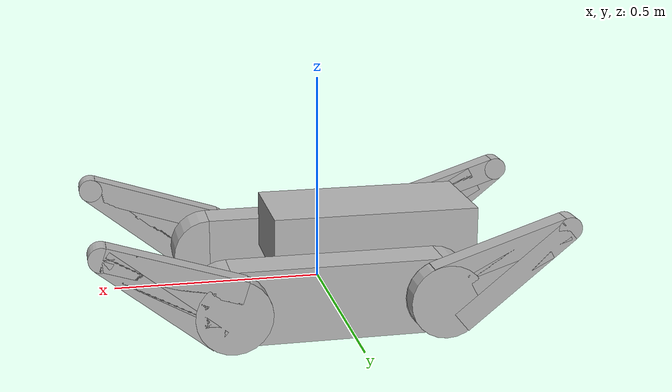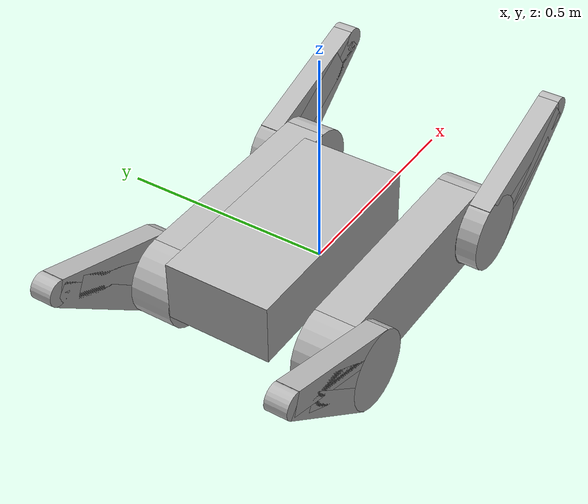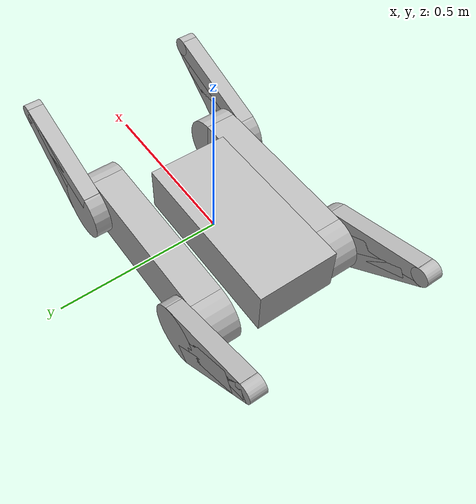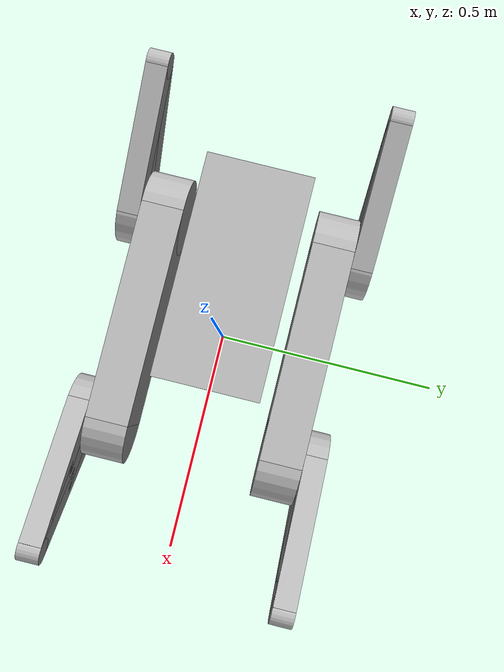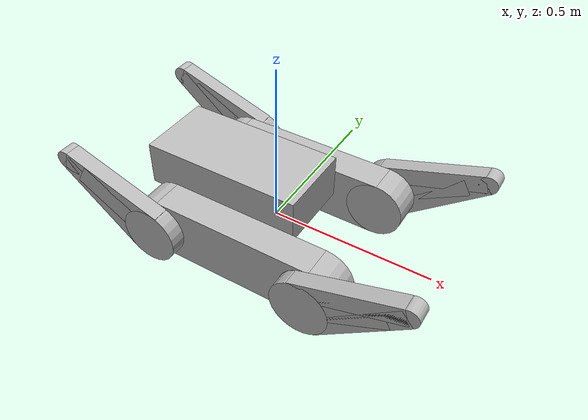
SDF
<sdf version='1.9'>
    <model name='simple_tracked'>
      <link name="base_footprint" />

      <link name='base_link'>
        <pose>0 0 0 0 0 0</pose>
        <inertial>
          <pose>-0.122 0 0.11799999999999999 1.5708 0 0</pose>
          <mass>13.140000000000001</mass>
          <inertia>
            <ixx>0.10019</ixx>
            <ixy>0</ixy>
            <ixz>0</ixz>
            <iyy>0.34504299999999999</iyy>
            <iyz>0</iyz>
            <izz>0.30204399999999998</izz>
          </inertia>
        </inertial>
        <collision name='base_link_collision'>
          <pose>-0.122 0 0.11799999999999999 0 0 0</pose>
          <geometry>
            <box>
              <size>0.50017 0.24093000000000001 0.13900000000000001</size>
            </box>
          </geometry>
          <surface>
            <friction>
              <ode/>
            </friction>
            <bounce/>
            <contact/>
          </surface>
        </collision>
        <visual name='base_link_visual'>
          <pose>-0.122 0 0.11799999999999999 0 0 0</pose>
          <geometry>
            <box>
              <size>0.50017 0.24093000000000001 0.13900000000000001</size>
            </box>
          </geometry>
        </visual>
        <self_collide>false</self_collide>
        <gravity>true</gravity>
        <kinematic>false</kinematic>
        <enable_wind>false</enable_wind>
        <sensor name="imu_sensor" type="imu">
          <always_on>1</always_on>
          <update_rate>1</update_rate>
          <visualize>true</visualize>
          <topic>imu</topic>
        </sensor>
      </link>
      <joint name='base_joint' type='fixed'>
        <child>base_link</child>
        <parent>base_footprint</parent>
        <pose>0 0 0 0 0 0</pose>
      </joint>

      <link name='left_track'>
        <pose>0 0.19850000000000001 -1.3877787807814457e-17 -6.6174449004242214e-24 -3.2182495707141233e-23 -8.6736173798840355e-19</pose>
        <inertial>
          <pose>0 0 0.0141 0 0 0</pose>
          <mass>6.0599999999999996</mass>
          <inertia>
            <ixx>0.0027309999999999999</ixx>
            <ixy>0</ixy>
            <ixz>0</ixz>
            <iyy>0.032554</iyy>
            <iyz>1.5e-05</iyz>
            <izz>0.031391000000000002</izz>
          </inertia>
        </inertial>
        <collision name='left_track_collision'>
          <pose>0 0 0.018550000000000001 1.5708 -5.5511151231257827e-17 1.5708</pose>
          <geometry>
            <box>
              <size>0.097280000000000005 0.18093999999999999 0.5</size>
            </box>
          </geometry>
          <surface>
            <friction>
              <ode>
                <mu>0.69999999999999996</mu>
                <mu2>150</mu2>
                <fdir1>0 1 0</fdir1>
              </ode>
            </friction>
            <bounce/>
            <contact/>
          </surface>
        </collision>
        <collision name='left_track_collision_1'>
          <pose>0.25 0 0.018550000000000001 1.5708 0 0</pose>
          <geometry>
            <cylinder>
              <length>0.097280000000000005</length>
              <radius>0.090469999999999995</radius>
            </cylinder>
          </geometry>
          <surface>
            <friction>
              <ode>
                <mu>0.69999999999999996</mu>
                <mu2>150</mu2>
                <fdir1>0 1 0</fdir1>
              </ode>
            </friction>
            <bounce/>
            <contact/>
          </surface>
        </collision>
        <collision name='left_track_collision_2'>
          <pose>-0.25 0 0.018550000000000001 1.5708 0 0</pose>
          <geometry>
            <cylinder>
              <length>0.097280000000000005</length>
              <radius>0.090469999999999995</radius>
            </cylinder>
          </geometry>
          <surface>
            <friction>
              <ode>
                <mu>0.69999999999999996</mu>
                <mu2>150</mu2>
                <fdir1>0 1 0</fdir1>
              </ode>
            </friction>
            <bounce/>
            <contact/>
          </surface>
        </collision>
        <visual name='left_track_visual'>
          <pose>0 0 0.018550000000000001 1.5708 -5.5511151231257827e-17 1.5708</pose>
          <geometry>
            <box>
              <size>0.097280000000000005 0.18093999999999999 0.5</size>
            </box>
          </geometry>
        </visual>
        <visual name='left_track_visual_1'>
          <pose>0.25 0 0.018550000000000001 1.5708 0 0</pose>
          <geometry>
            <cylinder>
              <length>0.097280000000000005</length>
              <radius>0.090469999999999995</radius>
            </cylinder>
          </geometry>
        </visual>
        <visual name='left_track_visual_2'>
          <pose>-0.25 0 0.018550000000000001 1.5708 0 0</pose>
          <geometry>
            <cylinder>
              <length>0.097280000000000005</length>
              <radius>0.090469999999999995</radius>
            </cylinder>
          </geometry>
        </visual>
        <gravity>true</gravity>
        <kinematic>false</kinematic>
        <enable_wind>false</enable_wind>
      </link>
      <joint name='left_track_j' type='fixed'>
        <child>left_track</child>
        <parent>base_link</parent>
        <pose>0 0 0 0 0 0</pose>
      </joint>
      <link name='right_track'>
        <pose>-8.8817841970012523e-16 -0.19850000000000001 -1.3877787807814457e-17 -6.6174449004242214e-24 -3.2182495707141233e-23 -8.6736173798840355e-19</pose>
        <inertial>
          <pose>0 0 0.0141 0 0 0</pose>
          <mass>6.0599999999999996</mass>
          <inertia>
            <ixx>0.0027309999999999999</ixx>
            <ixy>0</ixy>
            <ixz>0</ixz>
            <iyy>0.032554</iyy>
            <iyz>1.5e-05</iyz>
            <izz>0.031391000000000002</izz>
          </inertia>
        </inertial>
        <collision name='right_track_collision'>
          <pose>0 0 0.018550000000000001 1.5708 -5.5511151231257827e-17 1.5708</pose>
          <geometry>
            <box>
              <size>0.097280000000000005 0.18093999999999999 0.5</size>
            </box>
          </geometry>
          <surface>
            <friction>
              <ode>
                <mu>0.69999999999999996</mu>
                <mu2>150</mu2>
                <fdir1>0 1 0</fdir1>
              </ode>
            </friction>
            <bounce/>
            <contact/>
          </surface>
        </collision>
        <collision name='right_track_collision_1'>
          <pose>0.25 0 0.018550000000000001 1.5708 0 0</pose>
          <geometry>
            <cylinder>
              <length>0.097280000000000005</length>
              <radius>0.090469999999999995</radius>
            </cylinder>
          </geometry>
          <surface>
            <friction>
              <ode>
                <mu>0.69999999999999996</mu>
                <mu2>150</mu2>
                <fdir1>0 1 0</fdir1>
              </ode>
            </friction>
            <bounce/>
            <contact/>
          </surface>
        </collision>
        <collision name='right_track_collision_2'>
          <pose>-0.25 0 0.018550000000000001 1.5708 0 0</pose>
          <geometry>
            <cylinder>
              <length>0.097280000000000005</length>
              <radius>0.090469999999999995</radius>
            </cylinder>
          </geometry>
          <surface>
            <friction>
              <ode>
                <mu>0.69999999999999996</mu>
                <mu2>150</mu2>
                <fdir1>0 1 0</fdir1>
              </ode>
            </friction>
            <bounce/>
            <contact/>
          </surface>
        </collision>
        <visual name='right_track_visual'>
          <pose>0 0 0.018550000000000001 1.5708 -5.5511151231257827e-17 1.5708</pose>
          <geometry>
            <box>
              <size>0.097280000000000005 0.18093999999999999 0.5</size>
            </box>
          </geometry>
        </visual>
        <visual name='right_track_visual_1'>
          <pose>0.25 0 0.018550000000000001 1.5708 0 0</pose>
          <geometry>
            <cylinder>
              <length>0.097280000000000005</length>
              <radius>0.090469999999999995</radius>
            </cylinder>
          </geometry>
        </visual>
        <visual name='right_track_visual_2'>
          <pose>-0.25 0 0.018550000000000001 1.5708 0 0</pose>
          <geometry>
            <cylinder>
              <length>0.097280000000000005</length>
              <radius>0.090469999999999995</radius>
            </cylinder>
          </geometry>
        </visual>
        <gravity>true</gravity>
        <kinematic>false</kinematic>
        <enable_wind>false</enable_wind>
      </link>
      <joint name='right_track_j' type='fixed'>
        <child>right_track</child>
        <parent>base_link</parent>
        <pose>0 0 0 0 0 0</pose>
      </joint>
      <link name='front_left_flipper'>
        <pose>0.24999994858526753 0.2719999948407883 0.019499993412040811 1.3959020833992615e-08 -0.49651992800560996 1.935706113526475e-07</pose>
        <inertial>
          <pose>0.080000000000000002 0 0 0 0 0</pose>
          <mass>0.75</mass>
          <inertia>
            <ixx>0.0017491</ixx>
            <ixy>2.8512e-07</ixy>
            <ixz>0.0018277</ixz>
            <iyy>0.012277</iyy>
            <iyz>-3.6287999999999998e-07</iyz>
            <izz>0.010940999999999999</izz>
          </inertia>
        </inertial>
        <collision name='front_left_flipper_collision_large_wheel_collision'>
          <pose>0 0 0 1.5708 0 0</pose>
          <geometry>
            <cylinder>
              <length>0.04981</length>
              <radius>0.088999999999999996</radius>
            </cylinder>
          </geometry>
          <surface>
            <friction>
              <ode>
                <mu>0.69999999999999996</mu>
                <mu2>150</mu2>
                <fdir1>0 1 0</fdir1>
              </ode>
            </friction>
            <contact>
              <ode/>
            </contact>
            <bounce/>
          </surface>
          <max_contacts>20</max_contacts>
        </collision>
        <collision name='front_left_flipper_collision_small_wheel_collision_1'>
          <pose>0.33000000000000002 0 0 1.5708 0 0</pose>
          <geometry>
            <cylinder>
              <length>0.04981</length>
              <radius>0.029000000000000001</radius>
            </cylinder>
          </geometry>
          <surface>
            <friction>
              <ode>
                <mu>0.69999999999999996</mu>
                <mu2>150</mu2>
                <fdir1>0 1 0</fdir1>
              </ode>
            </friction>
            <contact>
              <ode/>
            </contact>
            <bounce/>
          </surface>
          <max_contacts>20</max_contacts>
        </collision>
        <collision name='front_left_flipper_collision_top_bar_collision_2'>
          <pose>0.16500000000000001 0 0.032500000000000001 0 0.18416199999999999 0</pose>
          <geometry>
            <box>
              <size>0.33000000000000002 0.04981 0.055</size>
            </box>
          </geometry>
          <surface>
            <friction>
              <ode>
                <mu>0.69999999999999996</mu>
                <mu2>150</mu2>
                <fdir1>0 1 0</fdir1>
              </ode>
            </friction>
            <contact>
              <ode/>
            </contact>
            <bounce/>
          </surface>
          <max_contacts>20</max_contacts>
        </collision>
        <collision name='front_left_flipper_collision_bottom_bar_collision_3'>
          <pose>0.16500000000000001 0 -0.032500000000000001 0 -0.18416199999999999 0</pose>
          <geometry>
            <box>
              <size>0.33000000000000002 0.04981 0.055</size>
            </box>
          </geometry>
          <surface>
            <friction>
              <ode>
                <mu>0.69999999999999996</mu>
                <mu2>150</mu2>
                <fdir1>0 1 0</fdir1>
              </ode>
            </friction>
            <contact>
              <ode/>
            </contact>
            <bounce/>
          </surface>
          <max_contacts>20</max_contacts>
        </collision>
        <collision name='front_left_flipper_collision_middle_bar_collision_4'>
          <pose>0.16600000000000001 0 0.0040000000000000001 0 -0.02 0</pose>
          <geometry>
            <box>
              <size>0.20000000000000001 0.04981 0.070000000000000007</size>
            </box>
          </geometry>
          <surface>
            <friction>
              <ode>
                <mu>0.69999999999999996</mu>
                <mu2>150</mu2>
                <fdir1>0 1 0</fdir1>
              </ode>
            </friction>
            <contact>
              <ode/>
            </contact>
            <bounce/>
          </surface>
          <max_contacts>20</max_contacts>
        </collision>
        <visual name='front_left_flipper_visual_large_wheel_visual'>
          <pose>0 0 0 1.5708 0 0</pose>
          <geometry>
            <cylinder>
              <length>0.04981</length>
              <radius>0.088999999999999996</radius>
            </cylinder>
          </geometry>
        </visual>
        <visual name='front_left_flipper_visual_small_wheel_visual_1'>
          <pose>0.33000000000000002 0 0 1.5708 0 0</pose>
          <geometry>
            <cylinder>
              <length>0.04981</length>
              <radius>0.029000000000000001</radius>
            </cylinder>
          </geometry>
        </visual>
        <visual name='front_left_flipper_visual_top_bar_visual_2'>
          <pose>0.16500000000000001 0 0.032500000000000001 0 0.18416199999999999 0</pose>
          <geometry>
            <box>
              <size>0.33000000000000002 0.04981 0.055</size>
            </box>
          </geometry>
        </visual>
        <visual name='front_left_flipper_visual_bottom_bar_visual_3'>
          <pose>0.16500000000000001 0 -0.032500000000000001 0 -0.18416199999999999 0</pose>
          <geometry>
            <box>
              <size>0.33000000000000002 0.04981 0.055</size>
            </box>
          </geometry>
        </visual>
        <visual name='front_left_flipper_visual_middle_bar_visual_4'>
          <pose>0.16600000000000001 0 0.0040000000000000001 0 -0.02 0</pose>
          <geometry>
            <box>
              <size>0.20000000000000001 0.04981 0.070000000000000007</size>
            </box>
          </geometry>
        </visual>
        <gravity>true</gravity>
        <velocity_decay/>
        <self_collide>true</self_collide>
        <kinematic>false</kinematic>
        <enable_wind>false</enable_wind>
      </link>
      <joint name='front_left_flipper_j' type='revolute'>
        <child>front_left_flipper</child>
        <parent>left_track</parent>
        <pose>0 0 0 0 0 0</pose>
        <axis>
          <xyz>0 1 0</xyz>
          <dynamics>
            <damping>0.5</damping>
          </dynamics>
        </axis>
      </joint>
      <link name='rear_left_flipper'>
        <pose>-0.24999999999999956 0.27199999999999996 0.019500000000000045 3.1415899999999999 -0.499999999999307 3.1415899999999999</pose>
        <inertial>
          <pose>0.080000000000000002 0 0 0 0 0</pose>
          <mass>0.75</mass>
          <inertia>
            <ixx>0.0017491</ixx>
            <ixy>2.8512e-07</ixy>
            <ixz>0.0018277</ixz>
            <iyy>0.012277</iyy>
            <iyz>-3.6287999999999998e-07</iyz>
            <izz>0.010940999999999999</izz>
          </inertia>
        </inertial>
        <collision name='rear_left_flipper_collision_large_wheel_collision'>
          <pose>0 0 0 1.5708 0 0</pose>
          <geometry>
            <cylinder>
              <length>0.04981</length>
              <radius>0.088999999999999996</radius>
            </cylinder>
          </geometry>
          <surface>
            <friction>
              <ode>
                <mu>0.69999999999999996</mu>
                <mu2>150</mu2>
                <fdir1>0 1 0</fdir1>
              </ode>
            </friction>
            <contact>
              <ode/>
            </contact>
            <bounce/>
          </surface>
          <max_contacts>20</max_contacts>
        </collision>
        <collision name='rear_left_flipper_collision_small_wheel_collision_1'>
          <pose>0.33000000000000002 0 0 1.5708 0 0</pose>
          <geometry>
            <cylinder>
              <length>0.04981</length>
              <radius>0.029000000000000001</radius>
            </cylinder>
          </geometry>
          <surface>
            <friction>
              <ode>
                <mu>0.69999999999999996</mu>
                <mu2>150</mu2>
                <fdir1>0 1 0</fdir1>
              </ode>
            </friction>
            <contact>
              <ode/>
            </contact>
            <bounce/>
          </surface>
          <max_contacts>20</max_contacts>
        </collision>
        <collision name='rear_left_flipper_collision_top_bar_collision_2'>
          <pose>0.16500000000000001 0 0.032500000000000001 0 0.18416199999999999 0</pose>
          <geometry>
            <box>
              <size>0.33000000000000002 0.04981 0.055</size>
            </box>
          </geometry>
          <surface>
            <friction>
              <ode>
                <mu>0.69999999999999996</mu>
                <mu2>150</mu2>
                <fdir1>0 1 0</fdir1>
              </ode>
            </friction>
            <contact>
              <ode/>
            </contact>
            <bounce/>
          </surface>
          <max_contacts>20</max_contacts>
        </collision>
        <collision name='rear_left_flipper_collision_bottom_bar_collision_3'>
          <pose>0.16500000000000001 0 -0.032500000000000001 0 -0.18416199999999999 0</pose>
          <geometry>
            <box>
              <size>0.33000000000000002 0.04981 0.055</size>
            </box>
          </geometry>
          <surface>
            <friction>
              <ode>
                <mu>0.69999999999999996</mu>
                <mu2>150</mu2>
                <fdir1>0 1 0</fdir1>
              </ode>
            </friction>
            <contact>
              <ode/>
            </contact>
            <bounce/>
          </surface>
          <max_contacts>20</max_contacts>
        </collision>
        <collision name='rear_left_flipper_collision_middle_bar_collision_4'>
          <pose>0.16600000000000001 0 0.0040000000000000001 0 -0.02 0</pose>
          <geometry>
            <box>
              <size>0.20000000000000001 0.04981 0.070000000000000007</size>
            </box>
          </geometry>
          <surface>
            <friction>
              <ode>
                <mu>0.69999999999999996</mu>
                <mu2>150</mu2>
                <fdir1>0 1 0</fdir1>
              </ode>
            </friction>
            <contact>
              <ode/>
            </contact>
            <bounce/>
          </surface>
          <max_contacts>20</max_contacts>
        </collision>
        <visual name='rear_left_flipper_visual_large_wheel_visual'>
          <pose>0 0 0 1.5708 0 0</pose>
          <geometry>
            <cylinder>
              <length>0.04981</length>
              <radius>0.088999999999999996</radius>
            </cylinder>
          </geometry>
        </visual>
        <visual name='rear_left_flipper_visual_small_wheel_visual_1'>
          <pose>0.33000000000000002 0 0 1.5708 0 0</pose>
          <geometry>
            <cylinder>
              <length>0.04981</length>
              <radius>0.029000000000000001</radius>
            </cylinder>
          </geometry>
        </visual>
        <visual name='rear_left_flipper_visual_top_bar_visual_2'>
          <pose>0.16500000000000001 0 0.032500000000000001 0 0.18416199999999999 0</pose>
          <geometry>
            <box>
              <size>0.33000000000000002 0.04981 0.055</size>
            </box>
          </geometry>
        </visual>
        <visual name='rear_left_flipper_visual_bottom_bar_visual_3'>
          <pose>0.16500000000000001 0 -0.032500000000000001 0 -0.18416199999999999 0</pose>
          <geometry>
            <box>
              <size>0.33000000000000002 0.04981 0.055</size>
            </box>
          </geometry>
        </visual>
        <visual name='rear_left_flipper_visual_middle_bar_visual_4'>
          <pose>0.16600000000000001 0 0.0040000000000000001 0 -0.02 0</pose>
          <geometry>
            <box>
              <size>0.20000000000000001 0.04981 0.070000000000000007</size>
            </box>
          </geometry>
        </visual>
        <gravity>true</gravity>
        <velocity_decay/>
        <self_collide>true</self_collide>
        <kinematic>false</kinematic>
        <enable_wind>false</enable_wind>
      </link>
      <joint name='rear_left_flipper_j' type='revolute'>
        <child>rear_left_flipper</child>
        <parent>left_track</parent>
        <pose>0 0 0 0 0 0</pose>
        <axis>
          <xyz>0 1 0</xyz>
          <dynamics>
            <damping>0.5</damping>
          </dynamics>
        </axis>
      </joint>
      <link name='front_right_flipper'>
        <pose>0.24999999999999911 -0.27199999999999996 0.019500000000000017 3.1415899999999999 0.49999999999963862 3.1415899999999999</pose>
        <inertial>
          <pose>-0.080000000000000002 0 0 0 0 0</pose>
          <mass>0.75</mass>
          <inertia>
            <ixx>0.0017491</ixx>
            <ixy>2.8512e-07</ixy>
            <ixz>0.0018277</ixz>
            <iyy>0.012277</iyy>
            <iyz>-3.6287999999999998e-07</iyz>
            <izz>0.010940999999999999</izz>
          </inertia>
        </inertial>
        <collision name='front_right_flipper_collision_large_wheel_collision'>
          <pose>0 0 0 1.5708 0 0</pose>
          <geometry>
            <cylinder>
              <length>0.04981</length>
              <radius>0.088999999999999996</radius>
            </cylinder>
          </geometry>
          <surface>
            <friction>
              <ode>
                <mu>0.69999999999999996</mu>
                <mu2>150</mu2>
                <fdir1>0 1 0</fdir1>
              </ode>
            </friction>
            <contact>
              <ode/>
            </contact>
            <bounce/>
          </surface>
          <max_contacts>20</max_contacts>
        </collision>
        <collision name='front_right_flipper_collision_small_wheel_collision_1'>
          <pose>-0.33000000000000002 0 0 1.5708 0 0</pose>
          <geometry>
            <cylinder>
              <length>0.04981</length>
              <radius>0.029000000000000001</radius>
            </cylinder>
          </geometry>
          <surface>
            <friction>
              <ode>
                <mu>0.69999999999999996</mu>
                <mu2>150</mu2>
                <fdir1>0 1 0</fdir1>
              </ode>
            </friction>
            <contact>
              <ode/>
            </contact>
            <bounce/>
          </surface>
          <max_contacts>20</max_contacts>
        </collision>
        <collision name='front_right_flipper_collision_top_bar_collision_2'>
          <pose>-0.16500000000000001 0 0.032500000000000001 0 0.18416199999999999 -3.1415899999999999</pose>
          <geometry>
            <box>
              <size>0.33000000000000002 0.04981 0.055</size>
            </box>
          </geometry>
          <surface>
            <friction>
              <ode>
                <mu>0.69999999999999996</mu>
                <mu2>150</mu2>
                <fdir1>0 1 0</fdir1>
              </ode>
            </friction>
            <contact>
              <ode/>
            </contact>
            <bounce/>
          </surface>
          <max_contacts>20</max_contacts>
        </collision>
        <collision name='front_right_flipper_collision_bottom_bar_collision_3'>
          <pose>-0.16500000000000001 0 -0.032500000000000001 0 -0.18416199999999999 -3.1415899999999999</pose>
          <geometry>
            <box>
              <size>0.33000000000000002 0.04981 0.055</size>
            </box>
          </geometry>
          <surface>
            <friction>
              <ode>
                <mu>0.69999999999999996</mu>
                <mu2>150</mu2>
                <fdir1>0 1 0</fdir1>
              </ode>
            </friction>
            <contact>
              <ode/>
            </contact>
            <bounce/>
          </surface>
          <max_contacts>20</max_contacts>
        </collision>
        <collision name='front_right_flipper_collision_middle_bar_collision_4'>
          <pose>-0.16600000000000001 0 0.0040000000000000001 -3.3093843050108442e-24 -0.020000000000000004 -3.1415899999999999</pose>
          <geometry>
            <box>
              <size>0.20000000000000001 0.04981 0.070000000000000007</size>
            </box>
          </geometry>
          <surface>
            <friction>
              <ode>
                <mu>0.69999999999999996</mu>
                <mu2>150</mu2>
                <fdir1>0 1 0</fdir1>
              </ode>
            </friction>
            <contact>
              <ode/>
            </contact>
            <bounce/>
          </surface>
          <max_contacts>20</max_contacts>
        </collision>
        <visual name='front_right_flipper_visual_large_wheel_visual'>
          <pose>0 0 0 1.5708 0 0</pose>
          <geometry>
            <cylinder>
              <length>0.04981</length>
              <radius>0.088999999999999996</radius>
            </cylinder>
          </geometry>
        </visual>
        <visual name='front_right_flipper_visual_small_wheel_visual_1'>
          <pose>-0.33000000000000002 0 0 1.5708 0 0</pose>
          <geometry>
            <cylinder>
              <length>0.04981</length>
              <radius>0.029000000000000001</radius>
            </cylinder>
          </geometry>
        </visual>
        <visual name='front_right_flipper_visual_top_bar_visual_2'>
          <pose>-0.16500000000000001 0 0.032500000000000001 0 0.18416199999999999 -3.1415899999999999</pose>
          <geometry>
            <box>
              <size>0.33000000000000002 0.04981 0.055</size>
            </box>
          </geometry>
        </visual>
        <visual name='front_right_flipper_visual_bottom_bar_visual_3'>
          <pose>-0.16500000000000001 0 -0.032500000000000001 0 -0.18416199999999999 -3.1415899999999999</pose>
          <geometry>
            <box>
              <size>0.33000000000000002 0.04981 0.055</size>
            </box>
          </geometry>
        </visual>
        <visual name='front_right_flipper_visual_middle_bar_visual_4'>
          <pose>-0.16600000000000001 0 0.0040000000000000001 -3.3093843050108442e-24 -0.020000000000000004 -3.1415899999999999</pose>
          <geometry>
            <box>
              <size>0.20000000000000001 0.04981 0.070000000000000007</size>
            </box>
          </geometry>
        </visual>
        <gravity>true</gravity>
        <velocity_decay/>
        <self_collide>true</self_collide>
        <kinematic>false</kinematic>
        <enable_wind>false</enable_wind>
      </link>
      <joint name='front_right_flipper_j' type='revolute'>
        <child>front_right_flipper</child>
        <parent>right_track</parent>
        <pose>0 0 0 0 0 0</pose>
        <axis>
          <xyz>0 1 0</xyz>
          <dynamics>
            <damping>0.5</damping>
          </dynamics>
        </axis>
      </joint>
      <link name='rear_right_flipper'>
        <pose>-0.24999994249490598 -0.272000105269326 0.019499998205294661 1.3956252588314928e-08 0.49615370147433774 2.0686407642123534e-07</pose>
        <inertial>
          <pose>-0.080000000000000002 0 0 0 0 0</pose>
          <mass>0.75</mass>
          <inertia>
            <ixx>0.0017491</ixx>
            <ixy>2.8512e-07</ixy>
            <ixz>0.0018277</ixz>
            <iyy>0.012277</iyy>
            <iyz>-3.6287999999999998e-07</iyz>
            <izz>0.010940999999999999</izz>
          </inertia>
        </inertial>
        <collision name='rear_right_flipper_collision_large_wheel_collision'>
          <pose>0 0 0 1.5708 0 0</pose>
          <geometry>
            <cylinder>
              <length>0.04981</length>
              <radius>0.088999999999999996</radius>
            </cylinder>
          </geometry>
          <surface>
            <friction>
              <ode>
                <mu>0.69999999999999996</mu>
                <mu2>150</mu2>
                <fdir1>0 1 0</fdir1>
              </ode>
            </friction>
            <contact>
              <ode/>
            </contact>
            <bounce/>
          </surface>
          <max_contacts>20</max_contacts>
        </collision>
        <collision name='rear_right_flipper_collision_small_wheel_collision_1'>
          <pose>-0.33000000000000002 0 0 1.5708 0 0</pose>
          <geometry>
            <cylinder>
              <length>0.04981</length>
              <radius>0.029000000000000001</radius>
            </cylinder>
          </geometry>
          <surface>
            <friction>
              <ode>
                <mu>0.69999999999999996</mu>
                <mu2>150</mu2>
                <fdir1>0 1 0</fdir1>
              </ode>
            </friction>
            <contact>
              <ode/>
            </contact>
            <bounce/>
          </surface>
          <max_contacts>20</max_contacts>
        </collision>
        <collision name='rear_right_flipper_collision_top_bar_collision_2'>
          <pose>-0.16500000000000001 0 0.032500000000000001 0 0.18416199999999999 -3.1415899999999999</pose>
          <geometry>
            <box>
              <size>0.33000000000000002 0.04981 0.055</size>
            </box>
          </geometry>
          <surface>
            <friction>
              <ode>
                <mu>0.69999999999999996</mu>
                <mu2>150</mu2>
                <fdir1>0 1 0</fdir1>
              </ode>
            </friction>
            <contact>
              <ode/>
            </contact>
            <bounce/>
          </surface>
          <max_contacts>20</max_contacts>
        </collision>
        <collision name='rear_right_flipper_collision_bottom_bar_collision_3'>
          <pose>-0.16500000000000001 0 -0.032500000000000001 0 -0.18416199999999999 -3.1415899999999999</pose>
          <geometry>
            <box>
              <size>0.33000000000000002 0.04981 0.055</size>
            </box>
          </geometry>
          <surface>
            <friction>
              <ode>
                <mu>0.69999999999999996</mu>
                <mu2>150</mu2>
                <fdir1>0 1 0</fdir1>
              </ode>
            </friction>
            <contact>
              <ode/>
            </contact>
            <bounce/>
          </surface>
          <max_contacts>20</max_contacts>
        </collision>
        <collision name='rear_right_flipper_collision_middle_bar_collision_4'>
          <pose>-0.16600000000000001 0 0.0040000000000000001 -3.3093843050108442e-24 -0.020000000000000004 -3.1415899999999999</pose>
          <geometry>
            <box>
              <size>0.20000000000000001 0.04981 0.070000000000000007</size>
            </box>
          </geometry>
          <surface>
            <friction>
              <ode>
                <mu>0.69999999999999996</mu>
                <mu2>150</mu2>
                <fdir1>0 1 0</fdir1>
              </ode>
            </friction>
            <contact>
              <ode/>
            </contact>
            <bounce/>
          </surface>
          <max_contacts>20</max_contacts>
        </collision>
        <visual name='rear_right_flipper_visual_large_wheel_visual'>
          <pose>0 0 0 1.5708 0 0</pose>
          <geometry>
            <cylinder>
              <length>0.04981</length>
              <radius>0.088999999999999996</radius>
            </cylinder>
          </geometry>
        </visual>
        <visual name='rear_right_flipper_visual_small_wheel_visual_1'>
          <pose>-0.33000000000000002 0 0 1.5708 0 0</pose>
          <geometry>
            <cylinder>
              <length>0.04981</length>
              <radius>0.029000000000000001</radius>
            </cylinder>
          </geometry>
        </visual>
        <visual name='rear_right_flipper_visual_top_bar_visual_2'>
          <pose>-0.16500000000000001 0 0.032500000000000001 0 0.18416199999999999 -3.1415899999999999</pose>
          <geometry>
            <box>
              <size>0.33000000000000002 0.04981 0.055</size>
            </box>
          </geometry>
        </visual>
        <visual name='rear_right_flipper_visual_bottom_bar_visual_3'>
          <pose>-0.16500000000000001 0 -0.032500000000000001 0 -0.18416199999999999 -3.1415899999999999</pose>
          <geometry>
            <box>
              <size>0.33000000000000002 0.04981 0.055</size>
            </box>
          </geometry>
        </visual>
        <visual name='rear_right_flipper_visual_middle_bar_visual_4'>
          <pose>-0.16600000000000001 0 0.0040000000000000001 -3.3093843050108442e-24 -0.020000000000000004 -3.1415899999999999</pose>
          <geometry>
            <box>
              <size>0.20000000000000001 0.04981 0.070000000000000007</size>
            </box>
          </geometry>
        </visual>
        <gravity>true</gravity>
        <velocity_decay/>
        <self_collide>true</self_collide>
        <kinematic>false</kinematic>
        <enable_wind>false</enable_wind>
      </link>
      <joint name='rear_right_flipper_j' type='revolute'>
        <child>rear_right_flipper</child>
        <parent>right_track</parent>
        <pose>0 0 0 0 0 0</pose>
        <axis>
          <xyz>0 1 0</xyz>
          <dynamics>
            <damping>0.5</damping>
          </dynamics>
        </axis>
      </joint>
      <plugin name='gz::sim::systems::TrackedVehicle' filename='gz-sim-tracked-vehicle-system'>
        <left_track>
          <link>left_track</link>
        </left_track>
        <left_track>
          <link>front_left_flipper</link>
        </left_track>
        <left_track>
          <link>rear_left_flipper</link>
        </left_track>
        <right_track>
          <link>right_track</link>
        </right_track>
        <right_track>
          <link>front_right_flipper</link>
        </right_track>
        <right_track>
          <link>rear_right_flipper</link>
        </right_track>
        <topic>cmd_vel</topic>
        <tracks_separation>0.4</tracks_separation>
        <tracks_height>0.18094</tracks_height>
        <steering_efficiency>0.7</steering_efficiency>
        <odom_topic>odom</odom_topic>
        <frame_id>odom</frame_id>
        <child_frame_id>base_link</child_frame_id>
        <odom_publisher_frequency>30</odom_publisher_frequency>
        <tf_topic>tf</tf_topic>
      </plugin>
      <plugin name='gz::sim::systems::TrackController' filename='gz-sim-track-controller-system'>
        <link>left_track</link>
        <min_velocity>-1.0</min_velocity>
        <max_velocity>3.0</max_velocity>
      </plugin>
      <plugin name='gz::sim::systems::TrackController' filename='gz-sim-track-controller-system'>
        <link>right_track</link>
        <min_velocity>-1.0</min_velocity>
        <max_velocity>3.0</max_velocity>
      </plugin>
      <plugin name='gz::sim::systems::TrackController' filename='gz-sim-track-controller-system'>
        <link>front_left_flipper</link>
        <min_velocity>-1.0</min_velocity>
        <max_velocity>3.0</max_velocity>
      </plugin>
      <plugin name='gz::sim::systems::TrackController' filename='gz-sim-track-controller-system'>
        <link>rear_left_flipper</link>
        <min_velocity>-1.0</min_velocity>
        <max_velocity>3.0</max_velocity>
      </plugin>
      <plugin name='gz::sim::systems::TrackController' filename='gz-sim-track-controller-system'>
        <link>front_right_flipper</link>
        <min_velocity>-1.0</min_velocity>
        <max_velocity>3.0</max_velocity>
      </plugin>
      <plugin name='gz::sim::systems::TrackController' filename='gz-sim-track-controller-system'>
        <link>rear_right_flipper</link>
        <min_velocity>-1.0</min_velocity>
        <max_velocity>3.0</max_velocity>
      </plugin>
          <plugin name='gz::sim::systems::PosePublisher' filename='gz-sim-pose-publisher-system'>
          <publish_link_pose>true</publish_link_pose>
          <publish_collision_pose>false</publish_collision_pose>
          <publish_visual_pose>false</publish_visual_pose>
          <publish_nested_model_pose>false</publish_nested_model_pose>
      </plugin>
      <static>false</static>
      <self_collide>false</self_collide>
      <plugin filename="gz-sim-joint-position-controller-system" name="gz::sim::systems::JointPositionController">
        <joint_name>front_left_flipper_j</joint_name>
        <topic>front_left_flipper_cmd</topic>
        <p_gain>1</p_gain>
        <i_gain>0.1</i_gain>
        <d_gain>0.01</d_gain>
        <i_max>1</i_max>
        <i_min>-1</i_min>
        <cmd_max>20</cmd_max>
        <cmd_min>-20</cmd_min>
      </plugin>
      <plugin filename="gz-sim-joint-position-controller-system" name="gz::sim::systems::JointPositionController">
        <joint_name>rear_left_flipper_j</joint_name>
        <topic>rear_left_flipper_cmd</topic>
        <p_gain>1</p_gain>
        <i_gain>0.1</i_gain>
        <d_gain>0.01</d_gain>
        <i_max>1</i_max>
        <i_min>-1</i_min>
        <cmd_max>20</cmd_max>
        <cmd_min>-20</cmd_min>
      </plugin>
      <plugin filename="gz-sim-joint-position-controller-system" name="gz::sim::systems::JointPositionController">
        <joint_name>front_right_flipper_j</joint_name>
        <topic>front_right_flipper_cmd</topic>
        <p_gain>1</p_gain>
        <i_gain>0.1</i_gain>
        <d_gain>0.01</d_gain>
        <i_max>1</i_max>
        <i_min>-1</i_min>
        <cmd_max>20</cmd_max>
        <cmd_min>-20</cmd_min>
      </plugin>
      <plugin filename="gz-sim-joint-position-controller-system" name="gz::sim::systems::JointPositionController">
        <joint_name>rear_right_flipper_j</joint_name>
        <topic>rear_right_flipper_cmd</topic>
        <p_gain>1</p_gain>
        <i_gain>0.1</i_gain>
        <d_gain>0.01</d_gain>
        <i_max>1</i_max>
        <i_min>-1</i_min>
        <cmd_max>20</cmd_max>
        <cmd_min>-20</cmd_min>
      </plugin>
      <plugin filename="gz-sim-joint-state-publisher-system" name="gz::sim::systems::JointStatePublisher">
          <topic>joint_states</topic>
          <joint_name>front_left_flipper_j</joint_name>
          <joint_name>rear_left_flipper_j</joint_name>
          <joint_name>front_right_flipper_j</joint_name>
          <joint_name>rear_right_flipper_j</joint_name>
      </plugin>
    </model>
</sdf>
